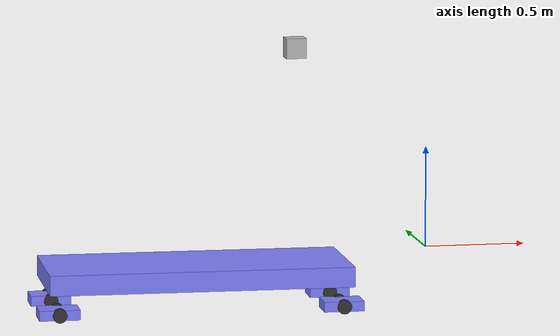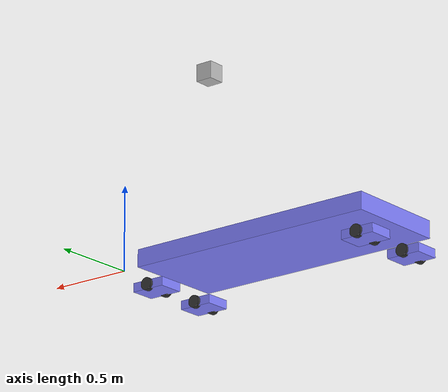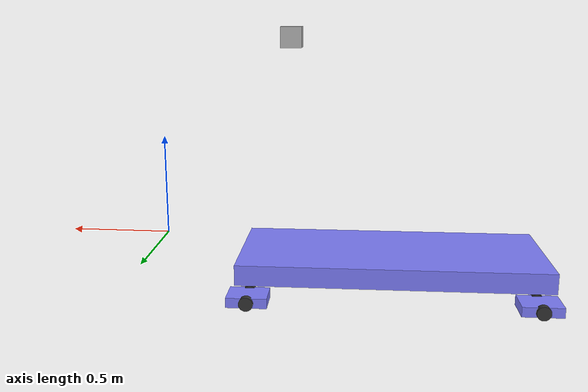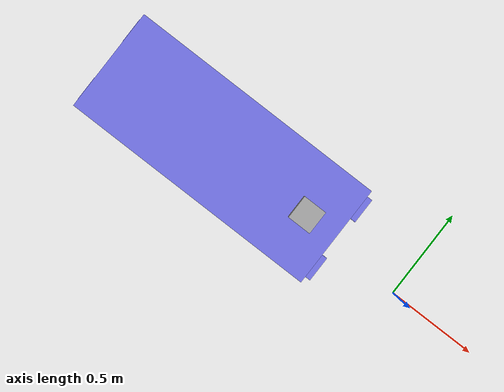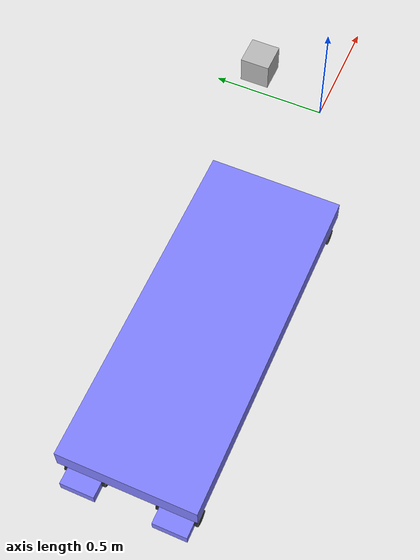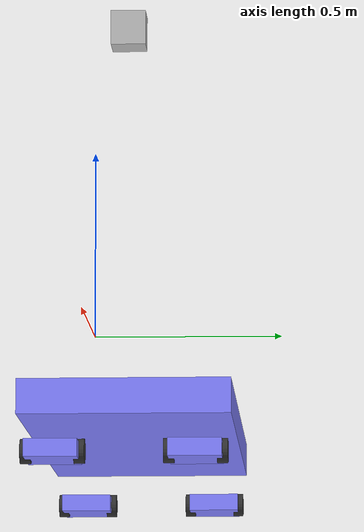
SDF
<?xml version="1.0" ?>
<sdf version="1.8">
    <model name='nipper'>

      <!-- base_link just a rectangle -->

      <link name='base_link'>
      <pose>-1.15 0.05 -0.10 0 -0 0</pose>
      <inertial>
          <mass>305</mass>
          <inertia>
            <ixx>3.82</ixx>
            <iyy>6.73</iyy>
            <izz>10.42</izz>
            <ixy>0</ixy>
            <ixz>0</ixz>
            <iyz>0</iyz>
          </inertia>
        </inertial>
        <visual name='visual_base_link'>
          <geometry>
            <box>
              <size>1.5 0.6 0.1</size>
            </box>
          </geometry>
          <material>
            <ambient>0.5 0.5 1.0 1</ambient>
            <diffuse>0.5 0.5 1.0 1</diffuse>
            <specular>0.0 0.0 1.0 1</specular>
          </material>
        </visual>
        <collision name='collision_base_link'>
          <geometry>
            <box>
              <size>1.5 0.6 0.1</size>
            </box>
          </geometry>
        </collision>

      </link>

      <!-- WheelSet Right of Nipper Robot -->

      <link name='wheelset_right'>
        <pose>-0.45 -0.15 -0.25 0 -0 0</pose>
        <inertial>
          <mass>4.8</mass>
          <inertia>
            <ixx>0.126164</ixx>
            <ixy>0</ixy>
            <ixz>0</ixz>
            <iyy>0.416519</iyy>
            <iyz>0</iyz>
            <izz>0.481014</izz>
          </inertia>
        </inertial>
        <visual name='wheelset_right_visual_base_link'>
          <geometry>
            <box>
              <size>0.2 0.15 0.05</size>
            </box>
          </geometry>
          <material>
            <ambient>0.5 0.5 1.0 1</ambient>
            <diffuse>0.5 0.5 1.0 1</diffuse>
            <specular>0.0 0.0 1.0 1</specular>
          </material>
        </visual>
        <collision name='wheelset_right_collision_base_link'>
          <geometry>
            <box>
              <size>0.2 0.15 0.05</size>
            </box>
          </geometry>
        </collision>
      </link>

      <link name='wheelset_right_left_wheel'>
        <pose>-0.45 -0.075 -0.25 -1.5707 0 0</pose>
        <inertial>
          <mass>0.2</mass>
          <inertia>
            <ixx>0.145833</ixx>
            <ixy>0</ixy>
            <ixz>0</ixz>
            <iyy>0.145833</iyy>
            <iyz>0</iyz>
            <izz>0.125</izz>
          </inertia>
        </inertial>
        <visual name='wheelset_right_visual_left_wheel'>
          <geometry>
            <cylinder>
            <radius>0.035</radius>
            <length>0.03</length>
            </cylinder>
          </geometry>
          <material>
            <ambient>0.2 0.2 0.2 1</ambient>
            <diffuse>0.2 0.2 0.2 1</diffuse>
            <specular>0.2 0.2 0.2 1</specular>
          </material>
        </visual>
        <collision name='wheelset_right_collision_left_wheel'>
          <geometry>
            <sphere>
              <radius>0.035</radius>
            </sphere>
          </geometry>
        </collision>
      </link>

      <link name='wheelset_right_right_wheel'>
        <pose>-0.45 -0.225 -0.25 -1.5707 0 0</pose>
        <inertial>
          <mass>0.2</mass>
          <inertia>
            <ixx>0.145833</ixx>
            <ixy>0</ixy>
            <ixz>0</ixz>
            <iyy>0.145833</iyy>
            <iyz>0</iyz>
            <izz>0.125</izz>
          </inertia>
        </inertial>
        <visual name='wheelset_right_visual_right_wheel'>
          <geometry>
            <cylinder>
            <radius>0.035</radius>
            <length>0.03</length>
            </cylinder>
          </geometry>
          <material>
            <ambient>0.2 0.2 0.2 1</ambient>
            <diffuse>0.2 0.2 0.2 1</diffuse>
            <specular>0.2 0.2 0.2 1</specular>
          </material>
        </visual>
        <collision name='wheelset_right_collision_right_wheel'>
          <geometry>
            <sphere>
              <radius>0.035</radius>
            </sphere>
          </geometry>
        </collision>
      </link>

      <joint name='wheelset_right_left_wheel_joint' type='revolute'>
        <parent>wheelset_right</parent>
        <child>wheelset_right_left_wheel</child>
        <axis>
          <xyz>0 0 1</xyz>
          <limit>
            <lower>-1.79769e+308</lower>
            <upper>1.79769e+308</upper>
          </limit>
        </axis>
      </joint>

      <joint name='wheelset_right_right_wheel_joint' type='revolute'>
        <parent>wheelset_right</parent>
        <child>wheelset_right_right_wheel</child>
        <axis>
          <xyz>0 0 1</xyz>
          <limit>
            <lower>-1.79769e+308</lower>
            <upper>1.79769e+308</upper>
          </limit>
        </axis>
      </joint>

      <!-- Joint controller plugin -->
      <plugin name="gz::sim::systems::JointController" filename="gz-sim-joint-controller-system">
        <joint_name>wheelset_right_left_wheel_joint</joint_name>
      </plugin>

      <plugin name="gz::sim::systems::JointController" filename="gz-sim-joint-controller-system">
        <joint_name>wheelset_right_right_wheel_joint</joint_name>
      </plugin>

      <!-- WheelSet Rear Right of Nipper Robot -->

      <link name='wheelset_rear_right'>
        <pose>-1.85 -0.15 -0.25 0 -0 0</pose>
        <inertial>
          <mass>4.8</mass>
          <inertia>
            <ixx>0.126164</ixx>
            <ixy>0</ixy>
            <ixz>0</ixz>
            <iyy>0.416519</iyy>
            <iyz>0</iyz>
            <izz>0.481014</izz>
          </inertia>
        </inertial>
        <visual name='wheelset_rear_right_visual_base_link'>
          <geometry>
            <box>
              <size>0.2 0.15 0.05</size>
            </box>
          </geometry>
          <material>
            <ambient>0.5 0.5 1.0 1</ambient>
            <diffuse>0.5 0.5 1.0 1</diffuse>
            <specular>0.0 0.0 1.0 1</specular>
          </material>
        </visual>
        <collision name='wheelset_rear_right_collision_base_link'>
          <geometry>
            <box>
              <size>0.2 0.15 0.05</size>
            </box>
          </geometry>
        </collision>
      </link>

      <link name='wheelset_rear_right_left_wheel'>
        <pose>-1.85 -0.075 -0.25 -1.5707 0 0</pose>
        <inertial>
          <mass>0.2</mass>
          <inertia>
            <ixx>0.145833</ixx>
            <ixy>0</ixy>
            <ixz>0</ixz>
            <iyy>0.145833</iyy>
            <iyz>0</iyz>
            <izz>0.125</izz>
          </inertia>
        </inertial>
        <visual name='wheelset_rear_right_visual_left_wheel'>
          <geometry>
            <cylinder>
            <radius>0.035</radius>
            <length>0.03</length>
            </cylinder>
          </geometry>
          <material>
            <ambient>0.2 0.2 0.2 1</ambient>
            <diffuse>0.2 0.2 0.2 1</diffuse>
            <specular>0.2 0.2 0.2 1</specular>
          </material>
        </visual>
        <collision name='wheelset_rear_right_collision_left_wheel'>
          <geometry>
            <sphere>
              <radius>0.035</radius>
            </sphere>
          </geometry>
        </collision>
      </link>

      <link name='wheelset_rear_right_right_wheel'>
        <pose>-1.85 -0.225 -0.25 -1.5707 0 0</pose>
        <inertial>
          <mass>0.2</mass>
          <inertia>
            <ixx>0.145833</ixx>
            <ixy>0</ixy>
            <ixz>0</ixz>
            <iyy>0.145833</iyy>
            <iyz>0</iyz>
            <izz>0.125</izz>
          </inertia>
        </inertial>
        <visual name='wheelset_rear_right_visual_right_wheel'>
          <geometry>
            <cylinder>
            <radius>0.035</radius>
            <length>0.03</length>
            </cylinder>
          </geometry>
          <material>
            <ambient>0.2 0.2 0.2 1</ambient>
            <diffuse>0.2 0.2 0.2 1</diffuse>
            <specular>0.2 0.2 0.2 1</specular>
          </material>
        </visual>
        <collision name='wheelset_rear_right_collision_right_wheel'>
          <geometry>
            <sphere>
              <radius>0.035</radius>
            </sphere>
          </geometry>
        </collision>
      </link>

      <joint name='wheelset_rear_right_left_wheel_joint' type='revolute'>
        <parent>wheelset_rear_right</parent>
        <child>wheelset_rear_right_left_wheel</child>
        <axis>
          <xyz>0 0 1</xyz>
          <limit>
            <lower>-1.79769e+308</lower>
            <upper>1.79769e+308</upper>
          </limit>
        </axis>
      </joint>

      <joint name='wheelset_rear_right_right_wheel_joint' type='revolute'>
        <parent>wheelset_rear_right</parent>
        <child>wheelset_rear_right_right_wheel</child>
        <axis>
          <xyz>0 0 1</xyz>
          <limit>
            <lower>-1.79769e+308</lower>
            <upper>1.79769e+308</upper>
          </limit>
        </axis>
      </joint>

      <!-- Joint controller plugin -->
      <plugin name="gz::sim::systems::JointController" filename="gz-sim-joint-controller-system">
        <joint_name>wheelset_rear_right_left_wheel_joint</joint_name>
      </plugin>

      <plugin name="gz::sim::systems::JointController" filename="gz-sim-joint-controller-system">
        <joint_name>wheelset_rear_right_right_wheel_joint</joint_name>
      </plugin>

      <!-- WheelSet left of Nipper Robot -->

      <link name='wheelset_left'>
        <pose>-0.45 0.25 -0.25 0 -0 0</pose>
        <inertial>
          <mass>4.8</mass>
          <inertia>
            <ixx>0.126164</ixx>
            <ixy>0</ixy>
            <ixz>0</ixz>
            <iyy>0.416519</iyy>
            <iyz>0</iyz>
            <izz>0.481014</izz>
          </inertia>
        </inertial>
        <visual name='wheelset_left_visual_base_link'>
          <geometry>
            <box>
              <size>0.2 0.15 0.05</size>
            </box>
          </geometry>
          <material>
            <ambient>0.5 0.5 1.0 1</ambient>
            <diffuse>0.5 0.5 1.0 1</diffuse>
            <specular>0.0 0.0 1.0 1</specular>
          </material>
        </visual>
        <collision name='wheelset_left_collision_base_link'>
          <geometry>
            <box>
              <size>0.2 0.15 0.05</size>
            </box>
          </geometry>
        </collision>
      </link>

      <link name='wheelset_left_left_wheel'>
        <pose>-0.45 0.325 -0.25 -1.5707 0 0</pose>
        <inertial>
          <mass>0.2</mass>
          <inertia>
            <ixx>0.145833</ixx>
            <ixy>0</ixy>
            <ixz>0</ixz>
            <iyy>0.145833</iyy>
            <iyz>0</iyz>
            <izz>0.125</izz>
          </inertia>
        </inertial>
        <visual name='wheelset_left_visual_left_wheel'>
          <geometry>
            <cylinder>
            <radius>0.035</radius>
            <length>0.03</length>
            </cylinder>
          </geometry>
          <material>
            <ambient>0.2 0.2 0.2 1</ambient>
            <diffuse>0.2 0.2 0.2 1</diffuse>
            <specular>0.2 0.2 0.2 1</specular>
          </material>
        </visual>
        <collision name='wheelset_left_collision_left_wheel'>
          <geometry>
            <sphere>
              <radius>0.035</radius>
            </sphere>
          </geometry>
        </collision>
      </link>

      <link name='wheelset_left_right_wheel'>
        <pose>-0.45 0.175 -0.25 -1.5707 0 0</pose>
        <inertial>
          <mass>0.2</mass>
          <inertia>
            <ixx>0.145833</ixx>
            <ixy>0</ixy>
            <ixz>0</ixz>
            <iyy>0.145833</iyy>
            <iyz>0</iyz>
            <izz>0.125</izz>
          </inertia>
        </inertial>
        <visual name='wheelset_left_visual_right_wheel'>
          <geometry>
            <cylinder>
            <radius>0.035</radius>
            <length>0.03</length>
            </cylinder>
          </geometry>
          <material>
            <ambient>0.2 0.2 0.2 1</ambient>
            <diffuse>0.2 0.2 0.2 1</diffuse>
            <specular>0.2 0.2 0.2 1</specular>
          </material>
        </visual>
        <collision name='wheelset_left_collision_right_wheel'>
          <geometry>
            <sphere>
              <radius>0.035</radius>
            </sphere>
          </geometry>
        </collision>
      </link>

      <joint name='wheelset_left_left_wheel_joint' type='revolute'>
        <parent>wheelset_left</parent>
        <child>wheelset_left_left_wheel</child>
        <axis>
          <xyz>0 0 1</xyz>
          <limit>
            <lower>-1.79769e+308</lower>
            <upper>1.79769e+308</upper>
          </limit>
        </axis>
      </joint>

      <joint name='wheelset_left_right_wheel_joint' type='revolute'>
        <parent>wheelset_left</parent>
        <child>wheelset_left_right_wheel</child>
        <axis>
          <xyz>0 0 1</xyz>
          <limit>
            <lower>-1.79769e+308</lower>
            <upper>1.79769e+308</upper>
          </limit>
        </axis>
      </joint>

      <!-- Joint controller plugin -->
      <plugin name="gz::sim::systems::JointController" filename="gz-sim-joint-controller-system">
        <joint_name>wheelset_left_left_wheel_joint</joint_name>
      </plugin>

      <plugin name="gz::sim::systems::JointController" filename="gz-sim-joint-controller-system">
        <joint_name>wheelset_left_right_wheel_joint</joint_name>
      </plugin>

      <!-- WheelSet Rear left of Nipper Robot -->

      <link name='wheelset_rear_left'>
        <pose>-1.85 0.25 -0.25 0 -0 0</pose>
        <inertial>
          <mass>4.8</mass>
          <inertia>
            <ixx>0.126164</ixx>
            <ixy>0</ixy>
            <ixz>0</ixz>
            <iyy>0.416519</iyy>
            <iyz>0</iyz>
            <izz>0.481014</izz>
          </inertia>
        </inertial>
        <visual name='wheelset_rear_left_visual_base_link'>
          <geometry>
            <box>
              <size>0.2 0.15 0.05</size>
            </box>
          </geometry>
          <material>
            <ambient>0.5 0.5 1.0 1</ambient>
            <diffuse>0.5 0.5 1.0 1</diffuse>
            <specular>0.0 0.0 1.0 1</specular>
          </material>
        </visual>
        <collision name='wheelset_rear_left_collision_base_link'>
          <geometry>
            <box>
              <size>0.2 0.15 0.05</size>
            </box>
          </geometry>
        </collision>
      </link>

      <link name='wheelset_rear_left_left_wheel'>
        <pose>-1.85 0.325 -0.25 -1.5707 0 0</pose>
        <inertial>
          <mass>0.2</mass>
          <inertia>
            <ixx>0.145833</ixx>
            <ixy>0</ixy>
            <ixz>0</ixz>
            <iyy>0.145833</iyy>
            <iyz>0</iyz>
            <izz>0.125</izz>
          </inertia>
        </inertial>
        <visual name='wheelset_rear_left_visual_left_wheel'>
          <geometry>
            <cylinder>
            <radius>0.035</radius>
            <length>0.03</length>
            </cylinder>
          </geometry>
          <material>
            <ambient>0.2 0.2 0.2 1</ambient>
            <diffuse>0.2 0.2 0.2 1</diffuse>
            <specular>0.2 0.2 0.2 1</specular>
          </material>
        </visual>
        <collision name='wheelset_rear_left_collision_left_wheel'>
          <geometry>
            <sphere>
              <radius>0.035</radius>
            </sphere>
          </geometry>
        </collision>
      </link>

      <link name='wheelset_rear_left_right_wheel'>
        <pose>-1.85 0.175 -0.25 -1.5707 0 0</pose>
        <inertial>
          <mass>0.2</mass>
          <inertia>
            <ixx>0.145833</ixx>
            <ixy>0</ixy>
            <ixz>0</ixz>
            <iyy>0.145833</iyy>
            <iyz>0</iyz>
            <izz>0.125</izz>
          </inertia>
        </inertial>
        <visual name='wheelset_rear_left_visual_right_wheel'>
          <geometry>
            <cylinder>
            <radius>0.035</radius>
            <length>0.03</length>
            </cylinder>
          </geometry>
          <material>
            <ambient>0.2 0.2 0.2 1</ambient>
            <diffuse>0.2 0.2 0.2 1</diffuse>
            <specular>0.2 0.2 0.2 1</specular>
          </material>
        </visual>
        <collision name='wheelset_rear_left_collision_right_wheel'>
          <geometry>
            <sphere>
              <radius>0.035</radius>
            </sphere>
          </geometry>
        </collision>
      </link>

      <joint name='wheelset_rear_left_left_wheel_joint' type='revolute'>
        <parent>wheelset_rear_left</parent>
        <child>wheelset_rear_left_left_wheel</child>
        <axis>
          <xyz>0 0 1</xyz>
          <limit>
            <lower>-1.79769e+308</lower>
            <upper>1.79769e+308</upper>
          </limit>
        </axis>
      </joint>

      <joint name='wheelset_rear_left_right_wheel_joint' type='revolute'>
        <parent>wheelset_rear_left</parent>
        <child>wheelset_rear_left_right_wheel</child>
        <axis>
          <xyz>0 0 1</xyz>
          <limit>
            <lower>-1.79769e+308</lower>
            <upper>1.79769e+308</upper>
          </limit>
        </axis>
      </joint>

      <!-- Joint controller plugin -->
      <plugin name="gz::sim::systems::JointController" filename="gz-sim-joint-controller-system">
        <joint_name>wheelset_rear_left_left_wheel_joint</joint_name>
      </plugin>

      <plugin name="gz::sim::systems::JointController" filename="gz-sim-joint-controller-system">
        <joint_name>wheelset_rear_left_right_wheel_joint</joint_name>
      </plugin>

    <!-- RIGHT -->
    <joint name="wheelset_right_revolute_joint" type="revolute">
      <parent>base_link</parent>
      <child>wheelset_right</child>
      <axis>
        <xyz>0 0 1</xyz>
        <limit>
          <lower>-2.007</lower>
          <upper>2.007</upper>
        </limit>
        <dynamics>
          <damping>50</damping>
          <friction>0.6</friction>
        </dynamics>
      </axis>
    </joint>

    <!-- REAR RIGHT -->
    <joint name="wheelset_rear_right_revolute_joint" type="revolute">
      <parent>base_link</parent>
      <child>wheelset_rear_right</child>
      <axis>
        <xyz>0 0 1</xyz>
        <limit>
          <lower>-2.007</lower>
          <upper>2.007</upper>
        </limit>
        <dynamics>
          <damping>50</damping>
          <friction>0.6</friction>
        </dynamics>
      </axis>
    </joint>

    <!-- FRONT LEFT -->
    <joint name="wheelset_left_revolute_joint" type="revolute">
      <parent>base_link</parent>
      <child>wheelset_left</child>

      <axis>
        <xyz>0 0 1</xyz>
        <limit>
          <lower>-2.007</lower>
          <upper>2.007</upper>
        </limit>
        <dynamics>
          <damping>50</damping>
          <friction>0.6</friction>
        </dynamics>
      </axis>
    </joint>

    <!-- REAR LEFT -->
    <joint name="wheelset_rear_left_revolute_joint" type="revolute">
      <parent>base_link</parent>
      <child>wheelset_rear_left</child>

      <axis>
        <xyz>0 0 1</xyz>
        <limit>
          <lower>-2.007</lower>
          <upper>2.007</upper>
        </limit>
        <dynamics>
          <damping>50</damping>
          <friction>0.6</friction>
        </dynamics>
      </axis>
    </joint>

    <link name="diff_drive/lidar_link">
        <pose>-0.65 0.05 1 0 0 0</pose>
        <inertial>
          <mass>0.1</mass>
          <inertia>
            <ixx>0.000166667</ixx>
            <iyy>0.000166667</iyy>
            <izz>0.000166667</izz>
          </inertia>
        </inertial>
        <collision name="collision">
          <geometry>
            <box>
              <size>0.1 0.1 0.1</size>
            </box>
          </geometry>
        </collision>
        <visual name="visual">
          <geometry>
            <box>
              <size>0.1 0.1 0.1</size>
            </box>
          </geometry>
        </visual>
        <sensor name='gpu_lidar' type='gpu_lidar'>
          <pose>0 0 0 0 0 0</pose>
          <topic>scan</topic>
           <gz_frame_id>diff_drive/lidar_link</gz_frame_id>
          <update_rate>10</update_rate>
          <lidar>
            <scan>
              <horizontal>
                <samples>640</samples>
                <resolution>1</resolution>
                <min_angle>-3.14159</min_angle>
                <max_angle>3.14159</max_angle>
              </horizontal>
              <vertical>
                <samples>1</samples>
                <resolution>1</resolution>
                <min_angle>0.0</min_angle>
                <max_angle>0.0</max_angle>
              </vertical>
            </scan>
            <range>
              <min>0.08</min>
              <max>10.0</max>
              <resolution>0.01</resolution>
            </range>
          </lidar>
          <visualize>true</visualize>
        </sensor>
    </link>

    <joint name='lidar_joint_loc' type='fixed'>
        <parent>base_link</parent>
        <child>diff_drive/lidar_link</child>
    </joint>

    </model>
</sdf>
